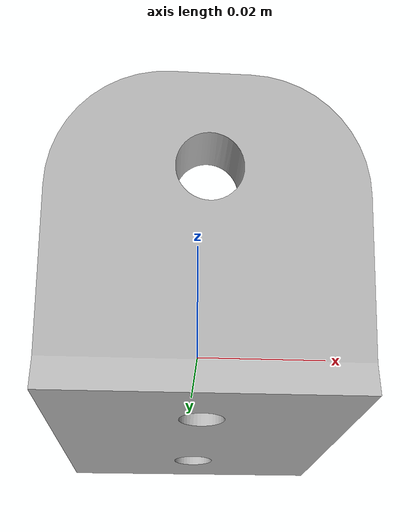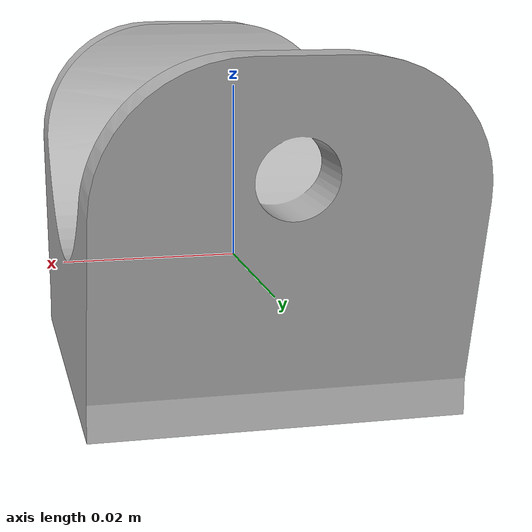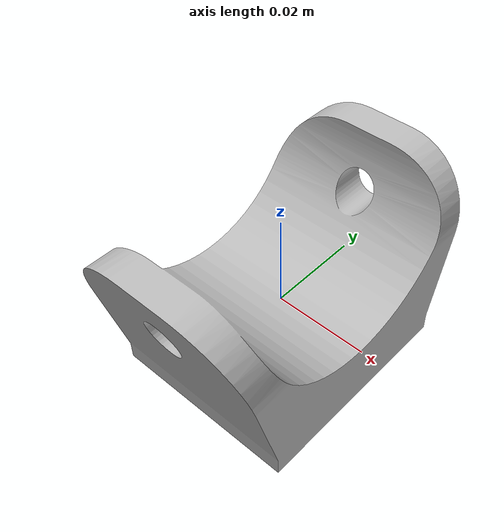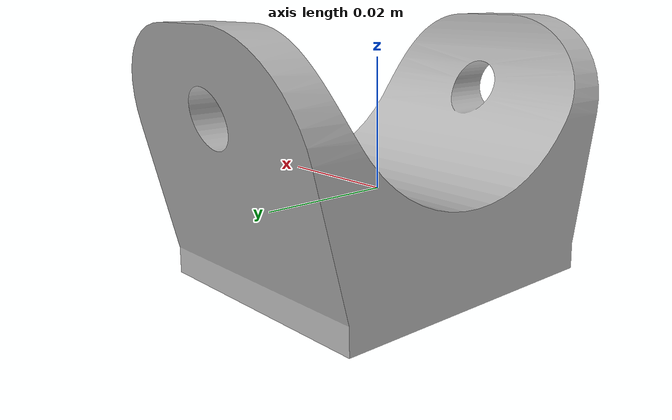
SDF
<?xml version="1.0" ?>
<sdf version="1.6">
  <model name="10)Landing Gear">
    <static>true</static>
    <link name="link">
      <collision name="collision">
        <geometry>
          <mesh>
            <scale>0.001 0.001 0.001</scale>
            <uri>model://10)Landing Gear/10)Landing Gear.stl</uri>
          </mesh>
        </geometry>
      </collision>
      <visual name="visual">
        <geometry>
          <mesh>
            <scale>0.001 0.001 0.001</scale>
            <uri>model://10)Landing Gear/10)Landing Gear.dae</uri>
          </mesh>
        </geometry>
      </visual>
    </link>
  </model>
</sdf>
